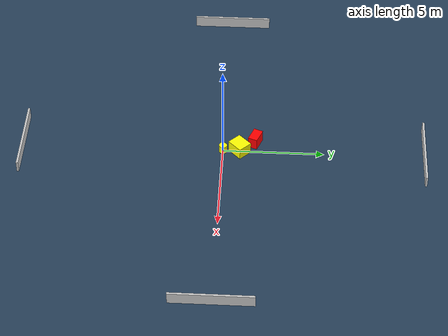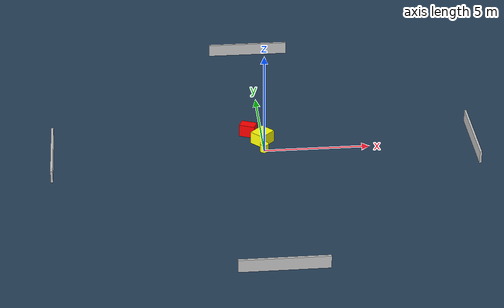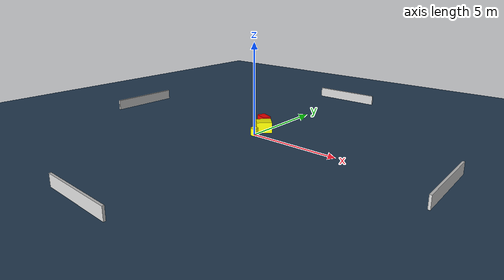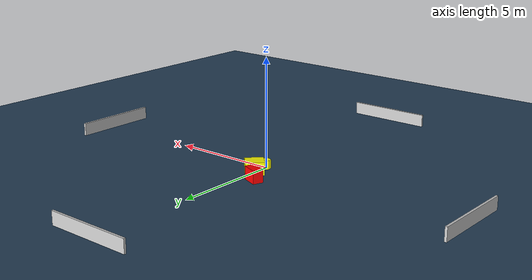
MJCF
<?xml version="1.0" ?>
<mujoco model="generated_environment">
  <option timestep="0.01" integrator="RK4" cone="elliptic"/>
  <default>
    <geom density="1"/>
  </default>
  <asset>
    <texture builtin="gradient" height="3072" name="skybox" rgb1="0.3 0.5 0.7" rgb2="0 0 0" type="skybox" width="512"/>
    <texture builtin="checker" height="300" name="groundplane" rgb1="0.2 0.3 0.4" rgb2="0.1 0.2 0.3" type="2d" width="300"/>
    <material name="groundplane" reflectance="0.2" texrepeat="5 5" texture="groundplane"/>
  </asset>
  <worldbody>
    <light dir="0 0 -1" directional="true" pos="0 0 1.5"/>
    <geom condim="3" friction="0.5 0.005 0.001" material="groundplane" name="floor" pos="0 0 0" size="0 0 0.05" type="plane"/>
    <body name="walls">
      <geom name="wall_1" condim="4" pos="-10.0 0.0 0.3" rgba="0.800000011920929 0.800000011920929 0.800000011920929 1.0" size="0.05 2.0 0.3" type="box"/>
      <geom name="wall_2" condim="4" pos="10.0 0.0 0.3" rgba="0.800000011920929 0.800000011920929 0.800000011920929 1.0" size="0.05 2.0 0.3" type="box"/>
      <geom name="wall_3" condim="4" pos="0.0 -10.0 0.3" rgba="0.800000011920929 0.800000011920929 0.800000011920929 1.0" size="2.0 0.05 0.3" type="box"/>
      <geom name="wall_4" condim="4" pos="0.0 10.0 0.3" rgba="0.800000011920929 0.800000011920929 0.800000011920929 1.0" size="2.0 0.05 0.3" type="box"/>
    </body>
    <body name="robot">
      <joint name="joint_x" type="slide" pos="0 0 0" axis="1 0 0"/>
      <joint name="joint_y" type="slide" pos="0 0 0" axis="0 1 0"/>
      <geom name="robot" type="cylinder" pos="0.0 0.0 0.2" size="0.2 0.2 0.0" mass="5.0" friction="1.0 0.005 0.0001" condim="4" rgba="1.0 1.0 0.0 1.0"/>
    </body>
    <body name="obstacle_1_movable">
      <geom name="obstacle_1_movable" condim="4" pos="-0.020280953381129414 0.8289230135551713 0.3" euler="0 0 314.46103279981367" friction="0.0 0.005 0.001" rgba="1.0 1.0 0.0 1.0" size="0.3666338184560518 0.42079088131351783 0.3" type="box" mass="0.1"/>
      <joint type="free"/>
    </body>
    <body name="obstacle_2_static">
      <geom name="obstacle_2_static" condim="4" pos="-0.6408787780940254 1.5910106908328483 0.3" euler="0 0 68.34440786059044" friction="0.0 0.005 0.001" rgba="1.0 0.0 0.0 1.0" size="0.23417475352840533 0.3756512180600846 0.3" type="box"/>
    </body>
  </worldbody>
  <actuator>
    <motor name="actuator_x" joint="joint_x" gear="1" ctrlrange="-1 1"/>
    <motor name="actuator_y" joint="joint_y" gear="1" ctrlrange="-1 1"/>
  </actuator>
</mujoco>
